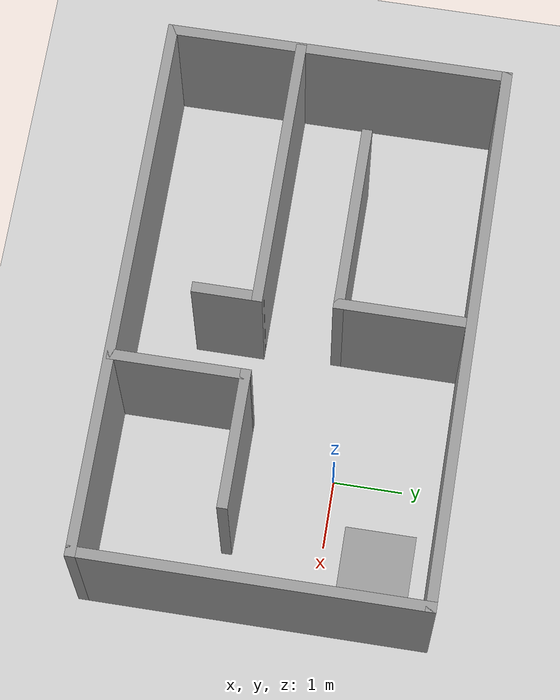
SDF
<sdf version="1.7">
 <world name="default">
  <light name="sun" type="directional">
   <pose>0 0 10 0 -0 0</pose>
   <diffuse>0.8 0.8 0.8 1</diffuse>
   <specular>0.2 0.2 0.2 1</specular>
   <attenuation>
    <range>1000</range>
    <constant>0.9</constant>
    <linear>0.01</linear>
    <quadratic>0.001</quadratic>
   </attenuation>
   <direction>-0.5 0.1 -0.9</direction>
   <spot><inner_angle>0</inner_angle><outer_angle>0</outer_angle><falloff>0</falloff></spot>
  </light>
  <model name="ground_plane">
   <static>1</static>
   <link name="link">
    <collision name="collision">
     <geometry><plane><normal>0 0 1</normal><size>100 100</size></plane></geometry>
     <surface><friction><ode><mu>100</mu><mu2>50</mu2></ode></friction></surface>
    </collision>
    <visual name="visual">
     <cast_shadows>0</cast_shadows>
     <geometry><plane><normal>0 0 1</normal><size>100 100</size></plane></geometry>
     <material>
      <script><uri>file://media/materials/scripts/gazebo.material</uri><name>Gazebo/Grey</name></script>
     </material>
    </visual>
   </link>
  </model>
  <gravity>0 0 -9.8</gravity>
  <magnetic_field>6e-06 2.3e-05 -4.2e-05</magnetic_field>
  <atmosphere type="adiabatic"/>
  <physics type="ode">
   <max_step_size>0.001</max_step_size>
   <real_time_factor>1</real_time_factor>
   <real_time_update_rate>1000</real_time_update_rate>
  </physics>
  <scene><ambient>0.4 0.4 0.4 1</ambient><background>0.7 0.7 0.7 1</background><shadows>1</shadows></scene>
  <audio><device>default</device></audio>
  <spherical_coordinates>
   <surface_model>EARTH_WGS84</surface_model>
   <latitude_deg>0</latitude_deg>
   <longitude_deg>0</longitude_deg>
   <elevation>0</elevation>
   <heading_deg>0</heading_deg>
  </spherical_coordinates>
  <model name="room_test">
   <pose>-1.7359 0.103836 -0.146297 0 -0 0</pose>
   <link name="Wall_0">
    <collision name="Wall_0_Collision">
     <geometry><box><size>8 0.15 2.5</size></box></geometry>
     <pose>0 0 1.25 0 -0 0</pose>
    </collision>
    <visual name="Wall_0_Visual">
     <pose>0 0 1.25 0 -0 0</pose>
     <geometry><box><size>8 0.15 2.5</size></box></geometry>
     <material>
      <script><uri>file://media/materials/scripts/gazebo.material</uri><name>Gazebo/Grey</name></script>
      <ambient>1 1 1 1</ambient>
     </material>
     <meta><layer>0</layer></meta>
    </visual>
    <pose>0 1.5025 0 0 -0 0</pose>
   </link>
   <link name="Wall_1">
    <collision name="Wall_1_Collision">
     <geometry><box><size>5 0.15 2.5</size></box></geometry>
     <pose>0 0 1.25 0 -0 0</pose>
    </collision>
    <visual name="Wall_1_Visual">
     <pose>0 0 1.25 0 -0 0</pose>
     <geometry><box><size>5 0.15 2.5</size></box></geometry>
     <material>
      <script><uri>file://media/materials/scripts/gazebo.material</uri><name>Gazebo/Grey</name></script>
      <ambient>1 1 1 1</ambient>
     </material>
     <meta><layer>0</layer></meta>
    </visual>
    <pose>3.925 -0.9225 0 0 -0 -1.5708</pose>
   </link>
   <link name="Wall_13">
    <collision name="Wall_13_Collision">
     <geometry><box><size>2 0.15 2.5</size></box></geometry>
     <pose>0 0 1.25 0 -0 0</pose>
    </collision>
    <visual name="Wall_13_Visual">
     <pose>0 0 1.25 0 -0 0</pose>
     <geometry><box><size>2 0.15 2.5</size></box></geometry>
     <material>
      <script><uri>file://media/materials/scripts/gazebo.material</uri><name>Gazebo/Grey</name></script>
      <ambient>1 1 1 1</ambient>
     </material>
     <meta><layer>0</layer></meta>
    </visual>
    <pose>1.1005 -2.3795 0 0 -0 1.5708</pose>
   </link>
   <link name="Wall_14">
    <collision name="Wall_14_Collision">
     <geometry><box><size>2 0.15 2.5</size></box></geometry>
     <pose>0 0 1.25 0 -0 0</pose>
    </collision>
    <visual name="Wall_14_Visual">
     <pose>0 0 1.25 0 -0 0</pose>
     <geometry><box><size>2 0.15 2.5</size></box></geometry>
     <material>
      <script><uri>file://media/materials/scripts/gazebo.material</uri><name>Gazebo/Grey</name></script>
      <ambient>1 1 1 1</ambient>
     </material>
     <meta><layer>0</layer></meta>
    </visual>
    <pose>2.0255 -1.4545 0 0 -0 0</pose>
   </link>
   <link name="Wall_16">
    <collision name="Wall_16_Collision">
     <geometry><box><size>4 0.15 2.5</size></box></geometry>
     <pose>0 0 1.25 0 -0 0</pose>
    </collision>
    <visual name="Wall_16_Visual">
     <pose>0 0 1.25 0 -0 0</pose>
     <geometry><box><size>4 0.15 2.5</size></box></geometry>
     <material>
      <script><uri>file://media/materials/scripts/gazebo.material</uri><name>Gazebo/Grey</name></script>
      <ambient>1 1 1 1</ambient>
     </material>
     <meta><layer>0</layer></meta>
    </visual>
    <pose>-1.977 -1.476 0 0 -0 0</pose>
   </link>
   <link name="Wall_17">
    <collision name="Wall_17_Collision">
     <geometry><box><size>1 0.15 2.5</size></box></geometry>
     <pose>0 0 1.25 0 -0 0</pose>
    </collision>
    <visual name="Wall_17_Visual">
     <pose>0 0 1.25 0 -0 0</pose>
     <geometry><box><size>1 0.15 2.5</size></box></geometry>
     <material>
      <script><uri>file://media/materials/scripts/gazebo.material</uri><name>Gazebo/Grey</name></script>
      <ambient>1 1 1 1</ambient>
     </material>
     <meta><layer>0</layer></meta>
    </visual>
    <pose>-0.052 -1.901 0 0 -0 -1.5708</pose>
   </link>
   <link name="Wall_2">
    <collision name="Wall_2_Collision">
     <geometry><box><size>8 0.15 2.5</size></box></geometry>
     <pose>0 0 1.25 0 -0 0</pose>
    </collision>
    <visual name="Wall_2_Visual">
     <pose>0 0 1.25 0 -0 0</pose>
     <geometry><box><size>8 0.15 2.5</size></box></geometry>
     <material>
      <script><uri>file://media/materials/scripts/gazebo.material</uri><name>Gazebo/Grey</name></script>
      <ambient>1 1 1 1</ambient>
     </material>
     <meta><layer>0</layer></meta>
    </visual>
    <pose>0 -3.3475 0 0 -0 3.14159</pose>
   </link>
   <link name="Wall_3">
    <collision name="Wall_3_Collision">
     <geometry><box><size>5 0.15 2.5</size></box></geometry>
     <pose>0 0 1.25 0 -0 0</pose>
    </collision>
    <visual name="Wall_3_Visual">
     <pose>0 0 1.25 0 -0 0</pose>
     <geometry><box><size>5 0.15 2.5</size></box></geometry>
     <material>
      <script><uri>file://media/materials/scripts/gazebo.material</uri><name>Gazebo/Grey</name></script>
      <ambient>1 1 1 1</ambient>
     </material>
     <meta><layer>0</layer></meta>
    </visual>
    <pose>-3.925 -0.9225 0 0 -0 1.5708</pose>
   </link>
   <link name="Wall_5">
    <collision name="Wall_5_Collision">
     <geometry><box><size>2 0.15 2.5</size></box></geometry>
     <pose>0 0 1.25 0 -0 0</pose>
    </collision>
    <visual name="Wall_5_Visual">
     <pose>0 0 1.25 0 -0 0</pose>
     <geometry><box><size>2 0.15 2.5</size></box></geometry>
     <material>
      <script><uri>file://media/materials/scripts/gazebo.material</uri><name>Gazebo/Grey</name></script>
      <ambient>1 1 1 1</ambient>
     </material>
     <meta><layer>0</layer></meta>
    </visual>
    <pose>-0.1185 0.5775 0 0 -0 -1.5708</pose>
   </link>
   <link name="Wall_6">
    <collision name="Wall_6_Collision">
     <geometry><box><size>2.75 0.15 2.5</size></box></geometry>
     <pose>0 0 1.25 0 -0 0</pose>
    </collision>
    <visual name="Wall_6_Visual">
     <pose>0 0 1.25 0 -0 0</pose>
     <geometry><box><size>2.75 0.15 2.5</size></box></geometry>
     <material>
      <script><uri>file://media/materials/scripts/gazebo.material</uri><name>Gazebo/Grey</name></script>
      <ambient>1 1 1 1</ambient>
     </material>
     <meta><layer>0</layer></meta>
    </visual>
    <pose>-1.4185 -0.3475 0 0 -0 3.14159</pose>
   </link>
   <static>1</static>
  </model>
  <model name="unit_box">
   <pose>1.40562 0.792687 0.499995 0 -1e-05 1e-06</pose>
   <link name="link">
    <inertial>
     <mass>1</mass>
     <inertia>
      <ixx>0.166667</ixx>
      <ixy>0</ixy>
      <ixz>0</ixz>
      <iyy>0.166667</iyy>
      <iyz>0</iyz>
      <izz>0.166667</izz>
     </inertia>
    </inertial>
    <collision name="collision"><geometry><box><size>1 1 1</size></box></geometry></collision>
    <visual name="visual">
     <geometry><box><size>1 1 1</size></box></geometry>
     <material>
      <script><name>Gazebo/Grey</name><uri>file://media/materials/scripts/gazebo.material</uri></script>
     </material>
    </visual>
   </link>
  </model>
 </world>
</sdf>
